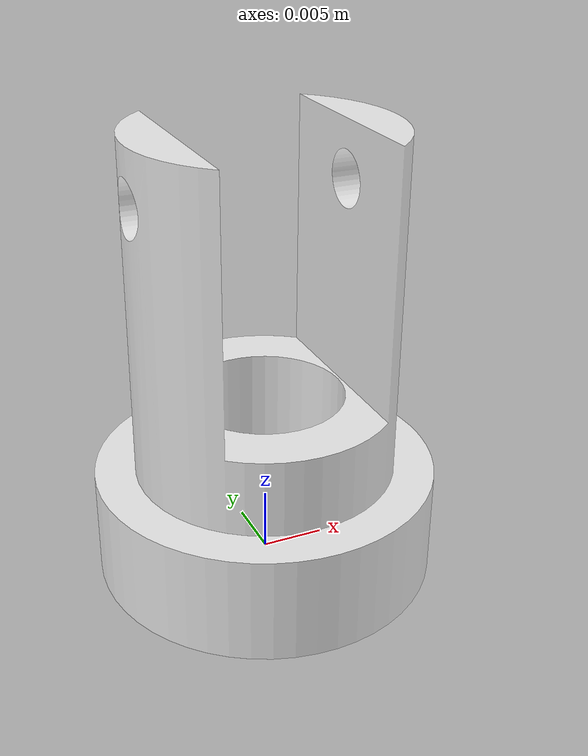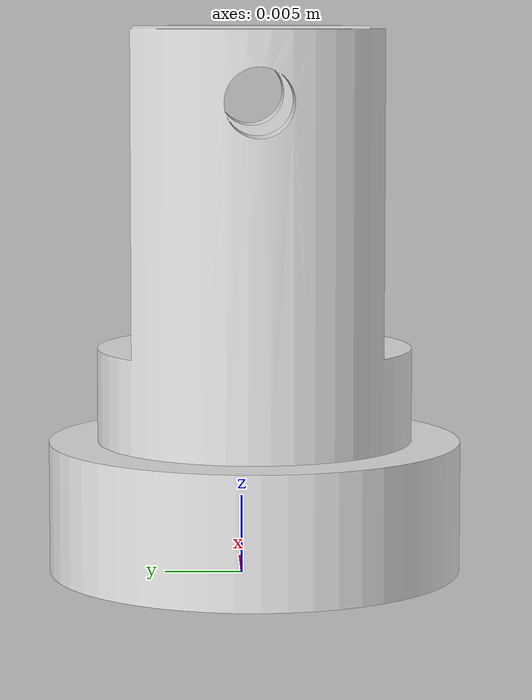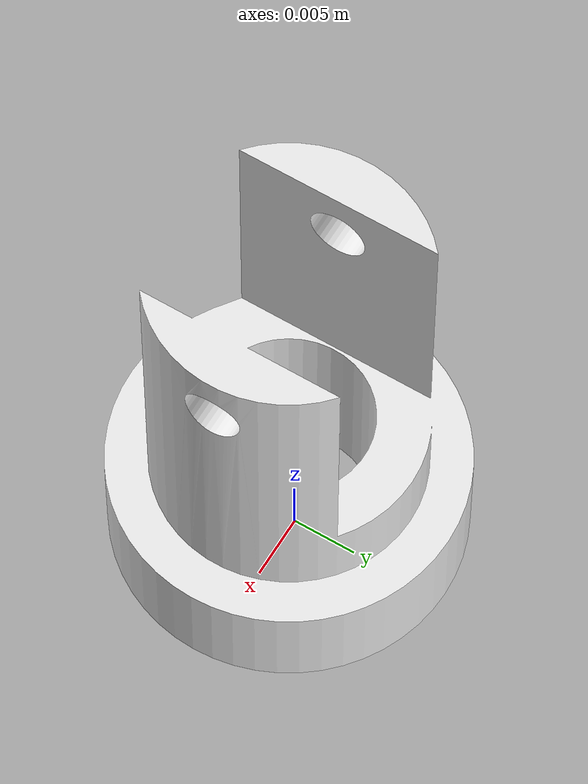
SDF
<?xml version="1.0" ?>
<sdf version="1.5">
  <model name="Part3">
    <static>true</static>
    <link name="part3_link">

      <collision name="collision">
        <geometry>
          <mesh>
            <uri>model://part3/meshes/part3.dae</uri>
            <scale>1.2 1.2 1.2</scale>
          </mesh>
        </geometry>
      </collision>

      <visual name="visual">
        <geometry>
          <mesh>
            <uri>model://part3/meshes/part3.dae</uri>
            <scale>1.2 1.2 1.2</scale>
          </mesh>
        </geometry>
        <material>
          <script>
            <uri>file://media/materials/scripts/gazebo.material</uri>
            <name>Gazebo/White</name>
          </script>
        </material>
      </visual>
    </link>
  </model>
</sdf>
